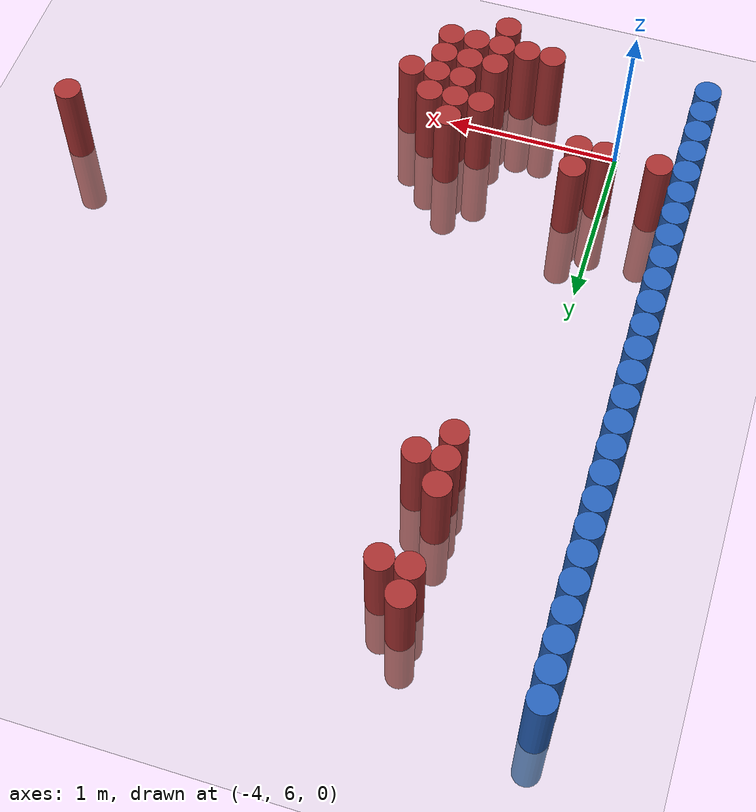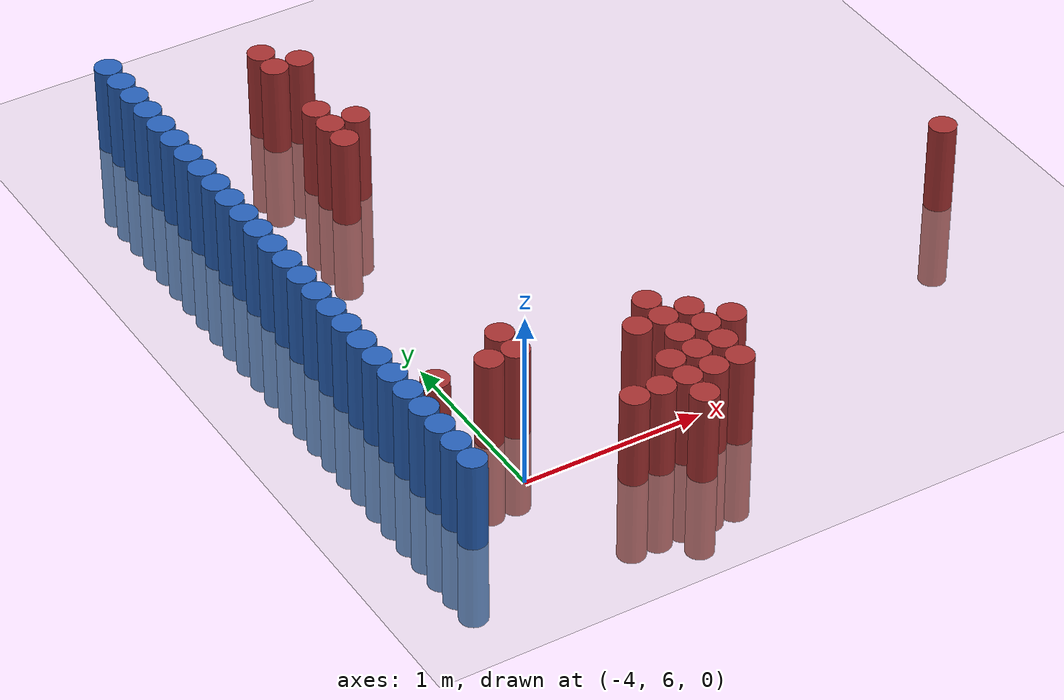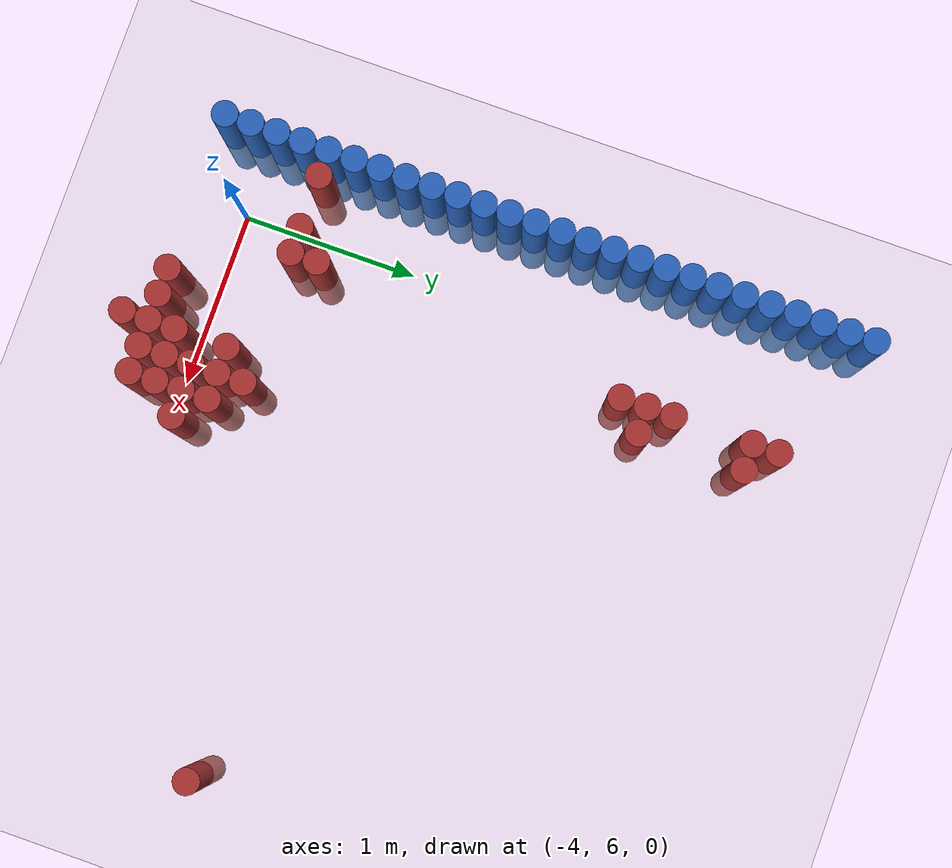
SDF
<sdf version="1.7">
 <world name="default">
  <model name="ground_plane">
   <static>1</static>
   <link name="link">
    <collision name="collision">
     <geometry><plane><normal>0 0 1</normal><size>100 100</size></plane></geometry>
     <surface><friction><ode><mu>100</mu><mu2>50</mu2></ode></friction></surface>
    </collision>
    <visual name="visual">
     <cast_shadows>0</cast_shadows>
     <geometry><plane><normal>0 0 1</normal><size>100 100</size></plane></geometry>
     <material>
      <script><uri>file://media/materials/scripts/gazebo.material</uri><name>Gazebo/Grey</name></script>
     </material>
    </visual>
   </link>
  </model>
  <model name="unit_cylinder_100">
   <static>1</static>
   <pose>-4.425 5.775 0 0 -0 0</pose>
   <link name="link">
    <inertial>
     <mass>1</mass>
     <inertia><ixx>0.145833</ixx><ixy>0</ixy><ixz>0</ixz><iyy>0.145833</iyy><iyz>0</iyz><izz>0.125</izz></inertia>
    </inertial>
    <collision name="collision">
     <geometry><cylinder><radius>0.075</radius><length>1</length></cylinder></geometry>
    </collision>
    <visual name="visual">
     <geometry><cylinder><radius>0.075</radius><length>1</length></cylinder></geometry>
     <material><ambient>0.152 0.379 0.72 1</ambient><diffuse>0.152 0.379 0.72 1</diffuse></material>
     <material>
      <script><name>Gazebo/Grey</name><uri>file://media/materials/scripts/gazebo.material</uri></script>
     </material>
    </visual>
   </link>
  </model>
  <model name="unit_cylinder_101">
   <static>1</static>
   <pose>-4.425 5.925 0 0 -0 0</pose>
   <link name="link">
    <inertial>
     <mass>1</mass>
     <inertia><ixx>0.145833</ixx><ixy>0</ixy><ixz>0</ixz><iyy>0.145833</iyy><iyz>0</iyz><izz>0.125</izz></inertia>
    </inertial>
    <collision name="collision">
     <geometry><cylinder><radius>0.075</radius><length>1</length></cylinder></geometry>
    </collision>
    <visual name="visual">
     <geometry><cylinder><radius>0.075</radius><length>1</length></cylinder></geometry>
     <material><ambient>0.152 0.379 0.72 1</ambient><diffuse>0.152 0.379 0.72 1</diffuse></material>
     <material>
      <script><name>Gazebo/Grey</name><uri>file://media/materials/scripts/gazebo.material</uri></script>
     </material>
    </visual>
   </link>
  </model>
  <model name="unit_cylinder_102">
   <static>1</static>
   <pose>-4.425 6.075 0 0 -0 0</pose>
   <link name="link">
    <inertial>
     <mass>1</mass>
     <inertia><ixx>0.145833</ixx><ixy>0</ixy><ixz>0</ixz><iyy>0.145833</iyy><iyz>0</iyz><izz>0.125</izz></inertia>
    </inertial>
    <collision name="collision">
     <geometry><cylinder><radius>0.075</radius><length>1</length></cylinder></geometry>
    </collision>
    <visual name="visual">
     <geometry><cylinder><radius>0.075</radius><length>1</length></cylinder></geometry>
     <material><ambient>0.152 0.379 0.72 1</ambient><diffuse>0.152 0.379 0.72 1</diffuse></material>
     <material>
      <script><name>Gazebo/Grey</name><uri>file://media/materials/scripts/gazebo.material</uri></script>
     </material>
    </visual>
   </link>
  </model>
  <model name="unit_cylinder_103">
   <static>1</static>
   <pose>-4.425 6.225 0 0 -0 0</pose>
   <link name="link">
    <inertial>
     <mass>1</mass>
     <inertia><ixx>0.145833</ixx><ixy>0</ixy><ixz>0</ixz><iyy>0.145833</iyy><iyz>0</iyz><izz>0.125</izz></inertia>
    </inertial>
    <collision name="collision">
     <geometry><cylinder><radius>0.075</radius><length>1</length></cylinder></geometry>
    </collision>
    <visual name="visual">
     <geometry><cylinder><radius>0.075</radius><length>1</length></cylinder></geometry>
     <material><ambient>0.152 0.379 0.72 1</ambient><diffuse>0.152 0.379 0.72 1</diffuse></material>
     <material>
      <script><name>Gazebo/Grey</name><uri>file://media/materials/scripts/gazebo.material</uri></script>
     </material>
    </visual>
   </link>
  </model>
  <model name="unit_cylinder_104">
   <static>1</static>
   <pose>-4.425 6.375 0 0 -0 0</pose>
   <link name="link">
    <inertial>
     <mass>1</mass>
     <inertia><ixx>0.145833</ixx><ixy>0</ixy><ixz>0</ixz><iyy>0.145833</iyy><iyz>0</iyz><izz>0.125</izz></inertia>
    </inertial>
    <collision name="collision">
     <geometry><cylinder><radius>0.075</radius><length>1</length></cylinder></geometry>
    </collision>
    <visual name="visual">
     <geometry><cylinder><radius>0.075</radius><length>1</length></cylinder></geometry>
     <material><ambient>0.152 0.379 0.72 1</ambient><diffuse>0.152 0.379 0.72 1</diffuse></material>
     <material>
      <script><name>Gazebo/Grey</name><uri>file://media/materials/scripts/gazebo.material</uri></script>
     </material>
    </visual>
   </link>
  </model>
  <model name="unit_cylinder_105">
   <static>1</static>
   <pose>-4.425 6.525 0 0 -0 0</pose>
   <link name="link">
    <inertial>
     <mass>1</mass>
     <inertia><ixx>0.145833</ixx><ixy>0</ixy><ixz>0</ixz><iyy>0.145833</iyy><iyz>0</iyz><izz>0.125</izz></inertia>
    </inertial>
    <collision name="collision">
     <geometry><cylinder><radius>0.075</radius><length>1</length></cylinder></geometry>
    </collision>
    <visual name="visual">
     <geometry><cylinder><radius>0.075</radius><length>1</length></cylinder></geometry>
     <material><ambient>0.152 0.379 0.72 1</ambient><diffuse>0.152 0.379 0.72 1</diffuse></material>
     <material>
      <script><name>Gazebo/Grey</name><uri>file://media/materials/scripts/gazebo.material</uri></script>
     </material>
    </visual>
   </link>
  </model>
  <model name="unit_cylinder_106">
   <static>1</static>
   <pose>-4.425 6.675 0 0 -0 0</pose>
   <link name="link">
    <inertial>
     <mass>1</mass>
     <inertia><ixx>0.145833</ixx><ixy>0</ixy><ixz>0</ixz><iyy>0.145833</iyy><iyz>0</iyz><izz>0.125</izz></inertia>
    </inertial>
    <collision name="collision">
     <geometry><cylinder><radius>0.075</radius><length>1</length></cylinder></geometry>
    </collision>
    <visual name="visual">
     <geometry><cylinder><radius>0.075</radius><length>1</length></cylinder></geometry>
     <material><ambient>0.152 0.379 0.72 1</ambient><diffuse>0.152 0.379 0.72 1</diffuse></material>
     <material>
      <script><name>Gazebo/Grey</name><uri>file://media/materials/scripts/gazebo.material</uri></script>
     </material>
    </visual>
   </link>
  </model>
  <model name="unit_cylinder_107">
   <static>1</static>
   <pose>-4.425 6.825 0 0 -0 0</pose>
   <link name="link">
    <inertial>
     <mass>1</mass>
     <inertia><ixx>0.145833</ixx><ixy>0</ixy><ixz>0</ixz><iyy>0.145833</iyy><iyz>0</iyz><izz>0.125</izz></inertia>
    </inertial>
    <collision name="collision">
     <geometry><cylinder><radius>0.075</radius><length>1</length></cylinder></geometry>
    </collision>
    <visual name="visual">
     <geometry><cylinder><radius>0.075</radius><length>1</length></cylinder></geometry>
     <material><ambient>0.152 0.379 0.72 1</ambient><diffuse>0.152 0.379 0.72 1</diffuse></material>
     <material>
      <script><name>Gazebo/Grey</name><uri>file://media/materials/scripts/gazebo.material</uri></script>
     </material>
    </visual>
   </link>
  </model>
  <model name="unit_cylinder_108">
   <static>1</static>
   <pose>-4.425 6.975 0 0 -0 0</pose>
   <link name="link">
    <inertial>
     <mass>1</mass>
     <inertia><ixx>0.145833</ixx><ixy>0</ixy><ixz>0</ixz><iyy>0.145833</iyy><iyz>0</iyz><izz>0.125</izz></inertia>
    </inertial>
    <collision name="collision">
     <geometry><cylinder><radius>0.075</radius><length>1</length></cylinder></geometry>
    </collision>
    <visual name="visual">
     <geometry><cylinder><radius>0.075</radius><length>1</length></cylinder></geometry>
     <material><ambient>0.152 0.379 0.72 1</ambient><diffuse>0.152 0.379 0.72 1</diffuse></material>
     <material>
      <script><name>Gazebo/Grey</name><uri>file://media/materials/scripts/gazebo.material</uri></script>
     </material>
    </visual>
   </link>
  </model>
  <model name="unit_cylinder_109">
   <static>1</static>
   <pose>-4.425 7.125 0 0 -0 0</pose>
   <link name="link">
    <inertial>
     <mass>1</mass>
     <inertia><ixx>0.145833</ixx><ixy>0</ixy><ixz>0</ixz><iyy>0.145833</iyy><iyz>0</iyz><izz>0.125</izz></inertia>
    </inertial>
    <collision name="collision">
     <geometry><cylinder><radius>0.075</radius><length>1</length></cylinder></geometry>
    </collision>
    <visual name="visual">
     <geometry><cylinder><radius>0.075</radius><length>1</length></cylinder></geometry>
     <material><ambient>0.152 0.379 0.72 1</ambient><diffuse>0.152 0.379 0.72 1</diffuse></material>
     <material>
      <script><name>Gazebo/Grey</name><uri>file://media/materials/scripts/gazebo.material</uri></script>
     </material>
    </visual>
   </link>
  </model>
  <model name="unit_cylinder_110">
   <static>1</static>
   <pose>-4.425 7.275 0 0 -0 0</pose>
   <link name="link">
    <inertial>
     <mass>1</mass>
     <inertia><ixx>0.145833</ixx><ixy>0</ixy><ixz>0</ixz><iyy>0.145833</iyy><iyz>0</iyz><izz>0.125</izz></inertia>
    </inertial>
    <collision name="collision">
     <geometry><cylinder><radius>0.075</radius><length>1</length></cylinder></geometry>
    </collision>
    <visual name="visual">
     <geometry><cylinder><radius>0.075</radius><length>1</length></cylinder></geometry>
     <material><ambient>0.152 0.379 0.72 1</ambient><diffuse>0.152 0.379 0.72 1</diffuse></material>
     <material>
      <script><name>Gazebo/Grey</name><uri>file://media/materials/scripts/gazebo.material</uri></script>
     </material>
    </visual>
   </link>
  </model>
  <model name="unit_cylinder_111">
   <static>1</static>
   <pose>-4.425 7.425 0 0 -0 0</pose>
   <link name="link">
    <inertial>
     <mass>1</mass>
     <inertia><ixx>0.145833</ixx><ixy>0</ixy><ixz>0</ixz><iyy>0.145833</iyy><iyz>0</iyz><izz>0.125</izz></inertia>
    </inertial>
    <collision name="collision">
     <geometry><cylinder><radius>0.075</radius><length>1</length></cylinder></geometry>
    </collision>
    <visual name="visual">
     <geometry><cylinder><radius>0.075</radius><length>1</length></cylinder></geometry>
     <material><ambient>0.152 0.379 0.72 1</ambient><diffuse>0.152 0.379 0.72 1</diffuse></material>
     <material>
      <script><name>Gazebo/Grey</name><uri>file://media/materials/scripts/gazebo.material</uri></script>
     </material>
    </visual>
   </link>
  </model>
  <model name="unit_cylinder_112">
   <static>1</static>
   <pose>-4.425 7.575 0 0 -0 0</pose>
   <link name="link">
    <inertial>
     <mass>1</mass>
     <inertia><ixx>0.145833</ixx><ixy>0</ixy><ixz>0</ixz><iyy>0.145833</iyy><iyz>0</iyz><izz>0.125</izz></inertia>
    </inertial>
    <collision name="collision">
     <geometry><cylinder><radius>0.075</radius><length>1</length></cylinder></geometry>
    </collision>
    <visual name="visual">
     <geometry><cylinder><radius>0.075</radius><length>1</length></cylinder></geometry>
     <material><ambient>0.152 0.379 0.72 1</ambient><diffuse>0.152 0.379 0.72 1</diffuse></material>
     <material>
      <script><name>Gazebo/Grey</name><uri>file://media/materials/scripts/gazebo.material</uri></script>
     </material>
    </visual>
   </link>
  </model>
  <model name="unit_cylinder_113">
   <static>1</static>
   <pose>-4.425 7.725 0 0 -0 0</pose>
   <link name="link">
    <inertial>
     <mass>1</mass>
     <inertia><ixx>0.145833</ixx><ixy>0</ixy><ixz>0</ixz><iyy>0.145833</iyy><iyz>0</iyz><izz>0.125</izz></inertia>
    </inertial>
    <collision name="collision">
     <geometry><cylinder><radius>0.075</radius><length>1</length></cylinder></geometry>
    </collision>
    <visual name="visual">
     <geometry><cylinder><radius>0.075</radius><length>1</length></cylinder></geometry>
     <material><ambient>0.152 0.379 0.72 1</ambient><diffuse>0.152 0.379 0.72 1</diffuse></material>
     <material>
      <script><name>Gazebo/Grey</name><uri>file://media/materials/scripts/gazebo.material</uri></script>
     </material>
    </visual>
   </link>
  </model>
  <model name="unit_cylinder_114">
   <static>1</static>
   <pose>-4.425 7.875 0 0 -0 0</pose>
   <link name="link">
    <inertial>
     <mass>1</mass>
     <inertia><ixx>0.145833</ixx><ixy>0</ixy><ixz>0</ixz><iyy>0.145833</iyy><iyz>0</iyz><izz>0.125</izz></inertia>
    </inertial>
    <collision name="collision">
     <geometry><cylinder><radius>0.075</radius><length>1</length></cylinder></geometry>
    </collision>
    <visual name="visual">
     <geometry><cylinder><radius>0.075</radius><length>1</length></cylinder></geometry>
     <material><ambient>0.152 0.379 0.72 1</ambient><diffuse>0.152 0.379 0.72 1</diffuse></material>
     <material>
      <script><name>Gazebo/Grey</name><uri>file://media/materials/scripts/gazebo.material</uri></script>
     </material>
    </visual>
   </link>
  </model>
  <model name="unit_cylinder_115">
   <static>1</static>
   <pose>-4.425 8.025 0 0 -0 0</pose>
   <link name="link">
    <inertial>
     <mass>1</mass>
     <inertia><ixx>0.145833</ixx><ixy>0</ixy><ixz>0</ixz><iyy>0.145833</iyy><iyz>0</iyz><izz>0.125</izz></inertia>
    </inertial>
    <collision name="collision">
     <geometry><cylinder><radius>0.075</radius><length>1</length></cylinder></geometry>
    </collision>
    <visual name="visual">
     <geometry><cylinder><radius>0.075</radius><length>1</length></cylinder></geometry>
     <material><ambient>0.152 0.379 0.72 1</ambient><diffuse>0.152 0.379 0.72 1</diffuse></material>
     <material>
      <script><name>Gazebo/Grey</name><uri>file://media/materials/scripts/gazebo.material</uri></script>
     </material>
    </visual>
   </link>
  </model>
  <model name="unit_cylinder_116">
   <static>1</static>
   <pose>-4.425 8.175 0 0 -0 0</pose>
   <link name="link">
    <inertial>
     <mass>1</mass>
     <inertia><ixx>0.145833</ixx><ixy>0</ixy><ixz>0</ixz><iyy>0.145833</iyy><iyz>0</iyz><izz>0.125</izz></inertia>
    </inertial>
    <collision name="collision">
     <geometry><cylinder><radius>0.075</radius><length>1</length></cylinder></geometry>
    </collision>
    <visual name="visual">
     <geometry><cylinder><radius>0.075</radius><length>1</length></cylinder></geometry>
     <material><ambient>0.152 0.379 0.72 1</ambient><diffuse>0.152 0.379 0.72 1</diffuse></material>
     <material>
      <script><name>Gazebo/Grey</name><uri>file://media/materials/scripts/gazebo.material</uri></script>
     </material>
    </visual>
   </link>
  </model>
  <model name="unit_cylinder_117">
   <static>1</static>
   <pose>-4.425 8.325 0 0 -0 0</pose>
   <link name="link">
    <inertial>
     <mass>1</mass>
     <inertia><ixx>0.145833</ixx><ixy>0</ixy><ixz>0</ixz><iyy>0.145833</iyy><iyz>0</iyz><izz>0.125</izz></inertia>
    </inertial>
    <collision name="collision">
     <geometry><cylinder><radius>0.075</radius><length>1</length></cylinder></geometry>
    </collision>
    <visual name="visual">
     <geometry><cylinder><radius>0.075</radius><length>1</length></cylinder></geometry>
     <material><ambient>0.152 0.379 0.72 1</ambient><diffuse>0.152 0.379 0.72 1</diffuse></material>
     <material>
      <script><name>Gazebo/Grey</name><uri>file://media/materials/scripts/gazebo.material</uri></script>
     </material>
    </visual>
   </link>
  </model>
  <model name="unit_cylinder_118">
   <static>1</static>
   <pose>-4.425 8.475 0 0 -0 0</pose>
   <link name="link">
    <inertial>
     <mass>1</mass>
     <inertia><ixx>0.145833</ixx><ixy>0</ixy><ixz>0</ixz><iyy>0.145833</iyy><iyz>0</iyz><izz>0.125</izz></inertia>
    </inertial>
    <collision name="collision">
     <geometry><cylinder><radius>0.075</radius><length>1</length></cylinder></geometry>
    </collision>
    <visual name="visual">
     <geometry><cylinder><radius>0.075</radius><length>1</length></cylinder></geometry>
     <material><ambient>0.152 0.379 0.72 1</ambient><diffuse>0.152 0.379 0.72 1</diffuse></material>
     <material>
      <script><name>Gazebo/Grey</name><uri>file://media/materials/scripts/gazebo.material</uri></script>
     </material>
    </visual>
   </link>
  </model>
  <model name="unit_cylinder_119">
   <static>1</static>
   <pose>-4.425 8.625 0 0 -0 0</pose>
   <link name="link">
    <inertial>
     <mass>1</mass>
     <inertia><ixx>0.145833</ixx><ixy>0</ixy><ixz>0</ixz><iyy>0.145833</iyy><iyz>0</iyz><izz>0.125</izz></inertia>
    </inertial>
    <collision name="collision">
     <geometry><cylinder><radius>0.075</radius><length>1</length></cylinder></geometry>
    </collision>
    <visual name="visual">
     <geometry><cylinder><radius>0.075</radius><length>1</length></cylinder></geometry>
     <material><ambient>0.152 0.379 0.72 1</ambient><diffuse>0.152 0.379 0.72 1</diffuse></material>
     <material>
      <script><name>Gazebo/Grey</name><uri>file://media/materials/scripts/gazebo.material</uri></script>
     </material>
    </visual>
   </link>
  </model>
  <model name="unit_cylinder_120">
   <static>1</static>
   <pose>-4.425 8.775 0 0 -0 0</pose>
   <link name="link">
    <inertial>
     <mass>1</mass>
     <inertia><ixx>0.145833</ixx><ixy>0</ixy><ixz>0</ixz><iyy>0.145833</iyy><iyz>0</iyz><izz>0.125</izz></inertia>
    </inertial>
    <collision name="collision">
     <geometry><cylinder><radius>0.075</radius><length>1</length></cylinder></geometry>
    </collision>
    <visual name="visual">
     <geometry><cylinder><radius>0.075</radius><length>1</length></cylinder></geometry>
     <material><ambient>0.152 0.379 0.72 1</ambient><diffuse>0.152 0.379 0.72 1</diffuse></material>
     <material>
      <script><name>Gazebo/Grey</name><uri>file://media/materials/scripts/gazebo.material</uri></script>
     </material>
    </visual>
   </link>
  </model>
  <model name="unit_cylinder_121">
   <static>1</static>
   <pose>-4.425 8.925 0 0 -0 0</pose>
   <link name="link">
    <inertial>
     <mass>1</mass>
     <inertia><ixx>0.145833</ixx><ixy>0</ixy><ixz>0</ixz><iyy>0.145833</iyy><iyz>0</iyz><izz>0.125</izz></inertia>
    </inertial>
    <collision name="collision">
     <geometry><cylinder><radius>0.075</radius><length>1</length></cylinder></geometry>
    </collision>
    <visual name="visual">
     <geometry><cylinder><radius>0.075</radius><length>1</length></cylinder></geometry>
     <material><ambient>0.152 0.379 0.72 1</ambient><diffuse>0.152 0.379 0.72 1</diffuse></material>
     <material>
      <script><name>Gazebo/Grey</name><uri>file://media/materials/scripts/gazebo.material</uri></script>
     </material>
    </visual>
   </link>
  </model>
  <model name="unit_cylinder_122">
   <static>1</static>
   <pose>-4.425 9.075 0 0 -0 0</pose>
   <link name="link">
    <inertial>
     <mass>1</mass>
     <inertia><ixx>0.145833</ixx><ixy>0</ixy><ixz>0</ixz><iyy>0.145833</iyy><iyz>0</iyz><izz>0.125</izz></inertia>
    </inertial>
    <collision name="collision">
     <geometry><cylinder><radius>0.075</radius><length>1</length></cylinder></geometry>
    </collision>
    <visual name="visual">
     <geometry><cylinder><radius>0.075</radius><length>1</length></cylinder></geometry>
     <material><ambient>0.152 0.379 0.72 1</ambient><diffuse>0.152 0.379 0.72 1</diffuse></material>
     <material>
      <script><name>Gazebo/Grey</name><uri>file://media/materials/scripts/gazebo.material</uri></script>
     </material>
    </visual>
   </link>
  </model>
  <model name="unit_cylinder_123">
   <static>1</static>
   <pose>-4.425 9.225 0 0 -0 0</pose>
   <link name="link">
    <inertial>
     <mass>1</mass>
     <inertia><ixx>0.145833</ixx><ixy>0</ixy><ixz>0</ixz><iyy>0.145833</iyy><iyz>0</iyz><izz>0.125</izz></inertia>
    </inertial>
    <collision name="collision">
     <geometry><cylinder><radius>0.075</radius><length>1</length></cylinder></geometry>
    </collision>
    <visual name="visual">
     <geometry><cylinder><radius>0.075</radius><length>1</length></cylinder></geometry>
     <material><ambient>0.152 0.379 0.72 1</ambient><diffuse>0.152 0.379 0.72 1</diffuse></material>
     <material>
      <script><name>Gazebo/Grey</name><uri>file://media/materials/scripts/gazebo.material</uri></script>
     </material>
    </visual>
   </link>
  </model>
  <model name="unit_cylinder_124">
   <static>1</static>
   <pose>-4.425 9.375 0 0 -0 0</pose>
   <link name="link">
    <inertial>
     <mass>1</mass>
     <inertia><ixx>0.145833</ixx><ixy>0</ixy><ixz>0</ixz><iyy>0.145833</iyy><iyz>0</iyz><izz>0.125</izz></inertia>
    </inertial>
    <collision name="collision">
     <geometry><cylinder><radius>0.075</radius><length>1</length></cylinder></geometry>
    </collision>
    <visual name="visual">
     <geometry><cylinder><radius>0.075</radius><length>1</length></cylinder></geometry>
     <material><ambient>0.152 0.379 0.72 1</ambient><diffuse>0.152 0.379 0.72 1</diffuse></material>
     <material>
      <script><name>Gazebo/Grey</name><uri>file://media/materials/scripts/gazebo.material</uri></script>
     </material>
    </visual>
   </link>
  </model>
  <model name="unit_cylinder_125">
   <static>1</static>
   <pose>-4.425 9.525 0 0 -0 0</pose>
   <link name="link">
    <inertial>
     <mass>1</mass>
     <inertia><ixx>0.145833</ixx><ixy>0</ixy><ixz>0</ixz><iyy>0.145833</iyy><iyz>0</iyz><izz>0.125</izz></inertia>
    </inertial>
    <collision name="collision">
     <geometry><cylinder><radius>0.075</radius><length>1</length></cylinder></geometry>
    </collision>
    <visual name="visual">
     <geometry><cylinder><radius>0.075</radius><length>1</length></cylinder></geometry>
     <material><ambient>0.152 0.379 0.72 1</ambient><diffuse>0.152 0.379 0.72 1</diffuse></material>
     <material>
      <script><name>Gazebo/Grey</name><uri>file://media/materials/scripts/gazebo.material</uri></script>
     </material>
    </visual>
   </link>
  </model>
  <model name="unit_cylinder_129">
   <static>1</static>
   <pose>-4.275 6.375 0 0 -0 0</pose>
   <link name="link">
    <inertial>
     <mass>1</mass>
     <inertia><ixx>0.145833</ixx><ixy>0</ixy><ixz>0</ixz><iyy>0.145833</iyy><iyz>0</iyz><izz>0.125</izz></inertia>
    </inertial>
    <collision name="collision">
     <geometry><cylinder><radius>0.075</radius><length>1</length></cylinder></geometry>
    </collision>
    <visual name="visual">
     <geometry><cylinder><radius>0.075</radius><length>1</length></cylinder></geometry>
     <material><ambient>0.648 0.192 0.192 1</ambient><diffuse>0.648 0.192 0.192 1</diffuse></material>
     <material>
      <script><name>Gazebo/Grey</name><uri>file://media/materials/scripts/gazebo.material</uri></script>
     </material>
    </visual>
   </link>
  </model>
  <model name="unit_cylinder_131">
   <static>1</static>
   <pose>-3.975 6.375 0 0 -0 0</pose>
   <link name="link">
    <inertial>
     <mass>1</mass>
     <inertia><ixx>0.145833</ixx><ixy>0</ixy><ixz>0</ixz><iyy>0.145833</iyy><iyz>0</iyz><izz>0.125</izz></inertia>
    </inertial>
    <collision name="collision">
     <geometry><cylinder><radius>0.075</radius><length>1</length></cylinder></geometry>
    </collision>
    <visual name="visual">
     <geometry><cylinder><radius>0.075</radius><length>1</length></cylinder></geometry>
     <material><ambient>0.648 0.192 0.192 1</ambient><diffuse>0.648 0.192 0.192 1</diffuse></material>
     <material>
      <script><name>Gazebo/Grey</name><uri>file://media/materials/scripts/gazebo.material</uri></script>
     </material>
    </visual>
   </link>
  </model>
  <model name="unit_cylinder_132">
   <static>1</static>
   <pose>-3.825 6.375 0 0 -0 0</pose>
   <link name="link">
    <inertial>
     <mass>1</mass>
     <inertia><ixx>0.145833</ixx><ixy>0</ixy><ixz>0</ixz><iyy>0.145833</iyy><iyz>0</iyz><izz>0.125</izz></inertia>
    </inertial>
    <collision name="collision">
     <geometry><cylinder><radius>0.075</radius><length>1</length></cylinder></geometry>
    </collision>
    <visual name="visual">
     <geometry><cylinder><radius>0.075</radius><length>1</length></cylinder></geometry>
     <material><ambient>0.648 0.192 0.192 1</ambient><diffuse>0.648 0.192 0.192 1</diffuse></material>
     <material>
      <script><name>Gazebo/Grey</name><uri>file://media/materials/scripts/gazebo.material</uri></script>
     </material>
    </visual>
   </link>
  </model>
  <model name="unit_cylinder_133">
   <static>1</static>
   <pose>-3.825 6.525 0 0 -0 0</pose>
   <link name="link">
    <inertial>
     <mass>1</mass>
     <inertia><ixx>0.145833</ixx><ixy>0</ixy><ixz>0</ixz><iyy>0.145833</iyy><iyz>0</iyz><izz>0.125</izz></inertia>
    </inertial>
    <collision name="collision">
     <geometry><cylinder><radius>0.075</radius><length>1</length></cylinder></geometry>
    </collision>
    <visual name="visual">
     <geometry><cylinder><radius>0.075</radius><length>1</length></cylinder></geometry>
     <material><ambient>0.648 0.192 0.192 1</ambient><diffuse>0.648 0.192 0.192 1</diffuse></material>
     <material>
      <script><name>Gazebo/Grey</name><uri>file://media/materials/scripts/gazebo.material</uri></script>
     </material>
    </visual>
   </link>
  </model>
  <model name="unit_cylinder_134">
   <static>1</static>
   <pose>-3.675 8.325 0 0 -0 0</pose>
   <link name="link">
    <inertial>
     <mass>1</mass>
     <inertia><ixx>0.145833</ixx><ixy>0</ixy><ixz>0</ixz><iyy>0.145833</iyy><iyz>0</iyz><izz>0.125</izz></inertia>
    </inertial>
    <collision name="collision">
     <geometry><cylinder><radius>0.075</radius><length>1</length></cylinder></geometry>
    </collision>
    <visual name="visual">
     <geometry><cylinder><radius>0.075</radius><length>1</length></cylinder></geometry>
     <material><ambient>0.648 0.192 0.192 1</ambient><diffuse>0.648 0.192 0.192 1</diffuse></material>
     <material>
      <script><name>Gazebo/Grey</name><uri>file://media/materials/scripts/gazebo.material</uri></script>
     </material>
    </visual>
   </link>
  </model>
  <model name="unit_cylinder_135">
   <static>1</static>
   <pose>-3.675 8.475 0 0 -0 0</pose>
   <link name="link">
    <inertial>
     <mass>1</mass>
     <inertia><ixx>0.145833</ixx><ixy>0</ixy><ixz>0</ixz><iyy>0.145833</iyy><iyz>0</iyz><izz>0.125</izz></inertia>
    </inertial>
    <collision name="collision">
     <geometry><cylinder><radius>0.075</radius><length>1</length></cylinder></geometry>
    </collision>
    <visual name="visual">
     <geometry><cylinder><radius>0.075</radius><length>1</length></cylinder></geometry>
     <material><ambient>0.648 0.192 0.192 1</ambient><diffuse>0.648 0.192 0.192 1</diffuse></material>
     <material>
      <script><name>Gazebo/Grey</name><uri>file://media/materials/scripts/gazebo.material</uri></script>
     </material>
    </visual>
   </link>
  </model>
  <model name="unit_cylinder_136">
   <static>1</static>
   <pose>-3.675 8.625 0 0 -0 0</pose>
   <link name="link">
    <inertial>
     <mass>1</mass>
     <inertia><ixx>0.145833</ixx><ixy>0</ixy><ixz>0</ixz><iyy>0.145833</iyy><iyz>0</iyz><izz>0.125</izz></inertia>
    </inertial>
    <collision name="collision">
     <geometry><cylinder><radius>0.075</radius><length>1</length></cylinder></geometry>
    </collision>
    <visual name="visual">
     <geometry><cylinder><radius>0.075</radius><length>1</length></cylinder></geometry>
     <material><ambient>0.648 0.192 0.192 1</ambient><diffuse>0.648 0.192 0.192 1</diffuse></material>
     <material>
      <script><name>Gazebo/Grey</name><uri>file://media/materials/scripts/gazebo.material</uri></script>
     </material>
    </visual>
   </link>
  </model>
  <model name="unit_cylinder_137">
   <static>1</static>
   <pose>-3.675 9.075 0 0 -0 0</pose>
   <link name="link">
    <inertial>
     <mass>1</mass>
     <inertia><ixx>0.145833</ixx><ixy>0</ixy><ixz>0</ixz><iyy>0.145833</iyy><iyz>0</iyz><izz>0.125</izz></inertia>
    </inertial>
    <collision name="collision">
     <geometry><cylinder><radius>0.075</radius><length>1</length></cylinder></geometry>
    </collision>
    <visual name="visual">
     <geometry><cylinder><radius>0.075</radius><length>1</length></cylinder></geometry>
     <material><ambient>0.648 0.192 0.192 1</ambient><diffuse>0.648 0.192 0.192 1</diffuse></material>
     <material>
      <script><name>Gazebo/Grey</name><uri>file://media/materials/scripts/gazebo.material</uri></script>
     </material>
    </visual>
   </link>
  </model>
  <model name="unit_cylinder_138">
   <static>1</static>
   <pose>-3.675 9.225 0 0 -0 0</pose>
   <link name="link">
    <inertial>
     <mass>1</mass>
     <inertia><ixx>0.145833</ixx><ixy>0</ixy><ixz>0</ixz><iyy>0.145833</iyy><iyz>0</iyz><izz>0.125</izz></inertia>
    </inertial>
    <collision name="collision">
     <geometry><cylinder><radius>0.075</radius><length>1</length></cylinder></geometry>
    </collision>
    <visual name="visual">
     <geometry><cylinder><radius>0.075</radius><length>1</length></cylinder></geometry>
     <material><ambient>0.648 0.192 0.192 1</ambient><diffuse>0.648 0.192 0.192 1</diffuse></material>
     <material>
      <script><name>Gazebo/Grey</name><uri>file://media/materials/scripts/gazebo.material</uri></script>
     </material>
    </visual>
   </link>
  </model>
  <model name="unit_cylinder_140">
   <static>1</static>
   <pose>-3.525 5.775 0 0 -0 0</pose>
   <link name="link">
    <inertial>
     <mass>1</mass>
     <inertia><ixx>0.145833</ixx><ixy>0</ixy><ixz>0</ixz><iyy>0.145833</iyy><iyz>0</iyz><izz>0.125</izz></inertia>
    </inertial>
    <collision name="collision">
     <geometry><cylinder><radius>0.075</radius><length>1</length></cylinder></geometry>
    </collision>
    <visual name="visual">
     <geometry><cylinder><radius>0.075</radius><length>1</length></cylinder></geometry>
     <material><ambient>0.648 0.192 0.192 1</ambient><diffuse>0.648 0.192 0.192 1</diffuse></material>
     <material>
      <script><name>Gazebo/Grey</name><uri>file://media/materials/scripts/gazebo.material</uri></script>
     </material>
    </visual>
   </link>
  </model>
  <model name="unit_cylinder_141">
   <static>1</static>
   <pose>-3.525 8.475 0 0 -0 0</pose>
   <link name="link">
    <inertial>
     <mass>1</mass>
     <inertia><ixx>0.145833</ixx><ixy>0</ixy><ixz>0</ixz><iyy>0.145833</iyy><iyz>0</iyz><izz>0.125</izz></inertia>
    </inertial>
    <collision name="collision">
     <geometry><cylinder><radius>0.075</radius><length>1</length></cylinder></geometry>
    </collision>
    <visual name="visual">
     <geometry><cylinder><radius>0.075</radius><length>1</length></cylinder></geometry>
     <material><ambient>0.648 0.192 0.192 1</ambient><diffuse>0.648 0.192 0.192 1</diffuse></material>
     <material>
      <script><name>Gazebo/Grey</name><uri>file://media/materials/scripts/gazebo.material</uri></script>
     </material>
    </visual>
   </link>
  </model>
  <model name="unit_cylinder_142">
   <static>1</static>
   <pose>-3.525 9.075 0 0 -0 0</pose>
   <link name="link">
    <inertial>
     <mass>1</mass>
     <inertia><ixx>0.145833</ixx><ixy>0</ixy><ixz>0</ixz><iyy>0.145833</iyy><iyz>0</iyz><izz>0.125</izz></inertia>
    </inertial>
    <collision name="collision">
     <geometry><cylinder><radius>0.075</radius><length>1</length></cylinder></geometry>
    </collision>
    <visual name="visual">
     <geometry><cylinder><radius>0.075</radius><length>1</length></cylinder></geometry>
     <material><ambient>0.648 0.192 0.192 1</ambient><diffuse>0.648 0.192 0.192 1</diffuse></material>
     <material>
      <script><name>Gazebo/Grey</name><uri>file://media/materials/scripts/gazebo.material</uri></script>
     </material>
    </visual>
   </link>
  </model>
  <model name="unit_cylinder_144">
   <static>1</static>
   <pose>-3.375 5.775 0 0 -0 0</pose>
   <link name="link">
    <inertial>
     <mass>1</mass>
     <inertia><ixx>0.145833</ixx><ixy>0</ixy><ixz>0</ixz><iyy>0.145833</iyy><iyz>0</iyz><izz>0.125</izz></inertia>
    </inertial>
    <collision name="collision">
     <geometry><cylinder><radius>0.075</radius><length>1</length></cylinder></geometry>
    </collision>
    <visual name="visual">
     <geometry><cylinder><radius>0.075</radius><length>1</length></cylinder></geometry>
     <material><ambient>0.648 0.192 0.192 1</ambient><diffuse>0.648 0.192 0.192 1</diffuse></material>
     <material>
      <script><name>Gazebo/Grey</name><uri>file://media/materials/scripts/gazebo.material</uri></script>
     </material>
    </visual>
   </link>
  </model>
  <model name="unit_cylinder_146">
   <static>1</static>
   <pose>-3.225 5.625 0 0 -0 0</pose>
   <link name="link">
    <inertial>
     <mass>1</mass>
     <inertia><ixx>0.145833</ixx><ixy>0</ixy><ixz>0</ixz><iyy>0.145833</iyy><iyz>0</iyz><izz>0.125</izz></inertia>
    </inertial>
    <collision name="collision">
     <geometry><cylinder><radius>0.075</radius><length>1</length></cylinder></geometry>
    </collision>
    <visual name="visual">
     <geometry><cylinder><radius>0.075</radius><length>1</length></cylinder></geometry>
     <material><ambient>0.648 0.192 0.192 1</ambient><diffuse>0.648 0.192 0.192 1</diffuse></material>
     <material>
      <script><name>Gazebo/Grey</name><uri>file://media/materials/scripts/gazebo.material</uri></script>
     </material>
    </visual>
   </link>
  </model>
  <model name="unit_cylinder_147">
   <static>1</static>
   <pose>-3.225 5.775 0 0 -0 0</pose>
   <link name="link">
    <inertial>
     <mass>1</mass>
     <inertia><ixx>0.145833</ixx><ixy>0</ixy><ixz>0</ixz><iyy>0.145833</iyy><iyz>0</iyz><izz>0.125</izz></inertia>
    </inertial>
    <collision name="collision">
     <geometry><cylinder><radius>0.075</radius><length>1</length></cylinder></geometry>
    </collision>
    <visual name="visual">
     <geometry><cylinder><radius>0.075</radius><length>1</length></cylinder></geometry>
     <material><ambient>0.648 0.192 0.192 1</ambient><diffuse>0.648 0.192 0.192 1</diffuse></material>
     <material>
      <script><name>Gazebo/Grey</name><uri>file://media/materials/scripts/gazebo.material</uri></script>
     </material>
    </visual>
   </link>
  </model>
  <model name="unit_cylinder_148">
   <static>1</static>
   <pose>-3.225 5.925 0 0 -0 0</pose>
   <link name="link">
    <inertial>
     <mass>1</mass>
     <inertia><ixx>0.145833</ixx><ixy>0</ixy><ixz>0</ixz><iyy>0.145833</iyy><iyz>0</iyz><izz>0.125</izz></inertia>
    </inertial>
    <collision name="collision">
     <geometry><cylinder><radius>0.075</radius><length>1</length></cylinder></geometry>
    </collision>
    <visual name="visual">
     <geometry><cylinder><radius>0.075</radius><length>1</length></cylinder></geometry>
     <material><ambient>0.648 0.192 0.192 1</ambient><diffuse>0.648 0.192 0.192 1</diffuse></material>
     <material>
      <script><name>Gazebo/Grey</name><uri>file://media/materials/scripts/gazebo.material</uri></script>
     </material>
    </visual>
   </link>
  </model>
  <model name="unit_cylinder_149">
   <static>1</static>
   <pose>-3.225 6.225 0 0 -0 0</pose>
   <link name="link">
    <inertial>
     <mass>1</mass>
     <inertia><ixx>0.145833</ixx><ixy>0</ixy><ixz>0</ixz><iyy>0.145833</iyy><iyz>0</iyz><izz>0.125</izz></inertia>
    </inertial>
    <collision name="collision">
     <geometry><cylinder><radius>0.075</radius><length>1</length></cylinder></geometry>
    </collision>
    <visual name="visual">
     <geometry><cylinder><radius>0.075</radius><length>1</length></cylinder></geometry>
     <material><ambient>0.648 0.192 0.192 1</ambient><diffuse>0.648 0.192 0.192 1</diffuse></material>
     <material>
      <script><name>Gazebo/Grey</name><uri>file://media/materials/scripts/gazebo.material</uri></script>
     </material>
    </visual>
   </link>
  </model>
  <model name="unit_cylinder_151">
   <static>1</static>
   <pose>-3.075 5.775 0 0 -0 0</pose>
   <link name="link">
    <inertial>
     <mass>1</mass>
     <inertia><ixx>0.145833</ixx><ixy>0</ixy><ixz>0</ixz><iyy>0.145833</iyy><iyz>0</iyz><izz>0.125</izz></inertia>
    </inertial>
    <collision name="collision">
     <geometry><cylinder><radius>0.075</radius><length>1</length></cylinder></geometry>
    </collision>
    <visual name="visual">
     <geometry><cylinder><radius>0.075</radius><length>1</length></cylinder></geometry>
     <material><ambient>0.648 0.192 0.192 1</ambient><diffuse>0.648 0.192 0.192 1</diffuse></material>
     <material>
      <script><name>Gazebo/Grey</name><uri>file://media/materials/scripts/gazebo.material</uri></script>
     </material>
    </visual>
   </link>
  </model>
  <model name="unit_cylinder_152">
   <static>1</static>
   <pose>-3.075 5.925 0 0 -0 0</pose>
   <link name="link">
    <inertial>
     <mass>1</mass>
     <inertia><ixx>0.145833</ixx><ixy>0</ixy><ixz>0</ixz><iyy>0.145833</iyy><iyz>0</iyz><izz>0.125</izz></inertia>
    </inertial>
    <collision name="collision">
     <geometry><cylinder><radius>0.075</radius><length>1</length></cylinder></geometry>
    </collision>
    <visual name="visual">
     <geometry><cylinder><radius>0.075</radius><length>1</length></cylinder></geometry>
     <material><ambient>0.648 0.192 0.192 1</ambient><diffuse>0.648 0.192 0.192 1</diffuse></material>
     <material>
      <script><name>Gazebo/Grey</name><uri>file://media/materials/scripts/gazebo.material</uri></script>
     </material>
    </visual>
   </link>
  </model>
  <model name="unit_cylinder_153">
   <static>1</static>
   <pose>-3.075 6.075 0 0 -0 0</pose>
   <link name="link">
    <inertial>
     <mass>1</mass>
     <inertia><ixx>0.145833</ixx><ixy>0</ixy><ixz>0</ixz><iyy>0.145833</iyy><iyz>0</iyz><izz>0.125</izz></inertia>
    </inertial>
    <collision name="collision">
     <geometry><cylinder><radius>0.075</radius><length>1</length></cylinder></geometry>
    </collision>
    <visual name="visual">
     <geometry><cylinder><radius>0.075</radius><length>1</length></cylinder></geometry>
     <material><ambient>0.648 0.192 0.192 1</ambient><diffuse>0.648 0.192 0.192 1</diffuse></material>
     <material>
      <script><name>Gazebo/Grey</name><uri>file://media/materials/scripts/gazebo.material</uri></script>
     </material>
    </visual>
   </link>
  </model>
  <model name="unit_cylinder_154">
   <static>1</static>
   <pose>-3.075 6.225 0 0 -0 0</pose>
   <link name="link">
    <inertial>
     <mass>1</mass>
     <inertia><ixx>0.145833</ixx><ixy>0</ixy><ixz>0</ixz><iyy>0.145833</iyy><iyz>0</iyz><izz>0.125</izz></inertia>
    </inertial>
    <collision name="collision">
     <geometry><cylinder><radius>0.075</radius><length>1</length></cylinder></geometry>
    </collision>
    <visual name="visual">
     <geometry><cylinder><radius>0.075</radius><length>1</length></cylinder></geometry>
     <material><ambient>0.648 0.192 0.192 1</ambient><diffuse>0.648 0.192 0.192 1</diffuse></material>
     <material>
      <script><name>Gazebo/Grey</name><uri>file://media/materials/scripts/gazebo.material</uri></script>
     </material>
    </visual>
   </link>
  </model>
  <model name="unit_cylinder_155">
   <static>1</static>
   <pose>-3.075 6.375 0 0 -0 0</pose>
   <link name="link">
    <inertial>
     <mass>1</mass>
     <inertia><ixx>0.145833</ixx><ixy>0</ixy><ixz>0</ixz><iyy>0.145833</iyy><iyz>0</iyz><izz>0.125</izz></inertia>
    </inertial>
    <collision name="collision">
     <geometry><cylinder><radius>0.075</radius><length>1</length></cylinder></geometry>
    </collision>
    <visual name="visual">
     <geometry><cylinder><radius>0.075</radius><length>1</length></cylinder></geometry>
     <material><ambient>0.648 0.192 0.192 1</ambient><diffuse>0.648 0.192 0.192 1</diffuse></material>
     <material>
      <script><name>Gazebo/Grey</name><uri>file://media/materials/scripts/gazebo.material</uri></script>
     </material>
    </visual>
   </link>
  </model>
  <model name="unit_cylinder_156">
   <static>1</static>
   <pose>-2.925 5.775 0 0 -0 0</pose>
   <link name="link">
    <inertial>
     <mass>1</mass>
     <inertia><ixx>0.145833</ixx><ixy>0</ixy><ixz>0</ixz><iyy>0.145833</iyy><iyz>0</iyz><izz>0.125</izz></inertia>
    </inertial>
    <collision name="collision">
     <geometry><cylinder><radius>0.075</radius><length>1</length></cylinder></geometry>
    </collision>
    <visual name="visual">
     <geometry><cylinder><radius>0.075</radius><length>1</length></cylinder></geometry>
     <material><ambient>0.648 0.192 0.192 1</ambient><diffuse>0.648 0.192 0.192 1</diffuse></material>
     <material>
      <script><name>Gazebo/Grey</name><uri>file://media/materials/scripts/gazebo.material</uri></script>
     </material>
    </visual>
   </link>
  </model>
  <model name="unit_cylinder_157">
   <static>1</static>
   <pose>-2.925 5.925 0 0 -0 0</pose>
   <link name="link">
    <inertial>
     <mass>1</mass>
     <inertia><ixx>0.145833</ixx><ixy>0</ixy><ixz>0</ixz><iyy>0.145833</iyy><iyz>0</iyz><izz>0.125</izz></inertia>
    </inertial>
    <collision name="collision">
     <geometry><cylinder><radius>0.075</radius><length>1</length></cylinder></geometry>
    </collision>
    <visual name="visual">
     <geometry><cylinder><radius>0.075</radius><length>1</length></cylinder></geometry>
     <material><ambient>0.648 0.192 0.192 1</ambient><diffuse>0.648 0.192 0.192 1</diffuse></material>
     <material>
      <script><name>Gazebo/Grey</name><uri>file://media/materials/scripts/gazebo.material</uri></script>
     </material>
    </visual>
   </link>
  </model>
  <model name="unit_cylinder_158">
   <static>1</static>
   <pose>-2.925 6.075 0 0 -0 0</pose>
   <link name="link">
    <inertial>
     <mass>1</mass>
     <inertia><ixx>0.145833</ixx><ixy>0</ixy><ixz>0</ixz><iyy>0.145833</iyy><iyz>0</iyz><izz>0.125</izz></inertia>
    </inertial>
    <collision name="collision">
     <geometry><cylinder><radius>0.075</radius><length>1</length></cylinder></geometry>
    </collision>
    <visual name="visual">
     <geometry><cylinder><radius>0.075</radius><length>1</length></cylinder></geometry>
     <material><ambient>0.648 0.192 0.192 1</ambient><diffuse>0.648 0.192 0.192 1</diffuse></material>
     <material>
      <script><name>Gazebo/Grey</name><uri>file://media/materials/scripts/gazebo.material</uri></script>
     </material>
    </visual>
   </link>
  </model>
  <model name="unit_cylinder_159">
   <static>1</static>
   <pose>-2.925 6.225 0 0 -0 0</pose>
   <link name="link">
    <inertial>
     <mass>1</mass>
     <inertia><ixx>0.145833</ixx><ixy>0</ixy><ixz>0</ixz><iyy>0.145833</iyy><iyz>0</iyz><izz>0.125</izz></inertia>
    </inertial>
    <collision name="collision">
     <geometry><cylinder><radius>0.075</radius><length>1</length></cylinder></geometry>
    </collision>
    <visual name="visual">
     <geometry><cylinder><radius>0.075</radius><length>1</length></cylinder></geometry>
     <material><ambient>0.648 0.192 0.192 1</ambient><diffuse>0.648 0.192 0.192 1</diffuse></material>
     <material>
      <script><name>Gazebo/Grey</name><uri>file://media/materials/scripts/gazebo.material</uri></script>
     </material>
    </visual>
   </link>
  </model>
  <model name="unit_cylinder_160">
   <static>1</static>
   <pose>-2.775 6.075 0 0 -0 0</pose>
   <link name="link">
    <inertial>
     <mass>1</mass>
     <inertia><ixx>0.145833</ixx><ixy>0</ixy><ixz>0</ixz><iyy>0.145833</iyy><iyz>0</iyz><izz>0.125</izz></inertia>
    </inertial>
    <collision name="collision">
     <geometry><cylinder><radius>0.075</radius><length>1</length></cylinder></geometry>
    </collision>
    <visual name="visual">
     <geometry><cylinder><radius>0.075</radius><length>1</length></cylinder></geometry>
     <material><ambient>0.648 0.192 0.192 1</ambient><diffuse>0.648 0.192 0.192 1</diffuse></material>
     <material>
      <script><name>Gazebo/Grey</name><uri>file://media/materials/scripts/gazebo.material</uri></script>
     </material>
    </visual>
   </link>
  </model>
  <model name="unit_cylinder_179">
   <static>1</static>
   <pose>-0.975 6.825 0 0 -0 0</pose>
   <link name="link">
    <inertial>
     <mass>1</mass>
     <inertia><ixx>0.145833</ixx><ixy>0</ixy><ixz>0</ixz><iyy>0.145833</iyy><iyz>0</iyz><izz>0.125</izz></inertia>
    </inertial>
    <collision name="collision">
     <geometry><cylinder><radius>0.075</radius><length>1</length></cylinder></geometry>
    </collision>
    <visual name="visual">
     <geometry><cylinder><radius>0.075</radius><length>1</length></cylinder></geometry>
     <material><ambient>0.648 0.192 0.192 1</ambient><diffuse>0.648 0.192 0.192 1</diffuse></material>
     <material>
      <script><name>Gazebo/Grey</name><uri>file://media/materials/scripts/gazebo.material</uri></script>
     </material>
    </visual>
   </link>
  </model>
 </world>
</sdf>
